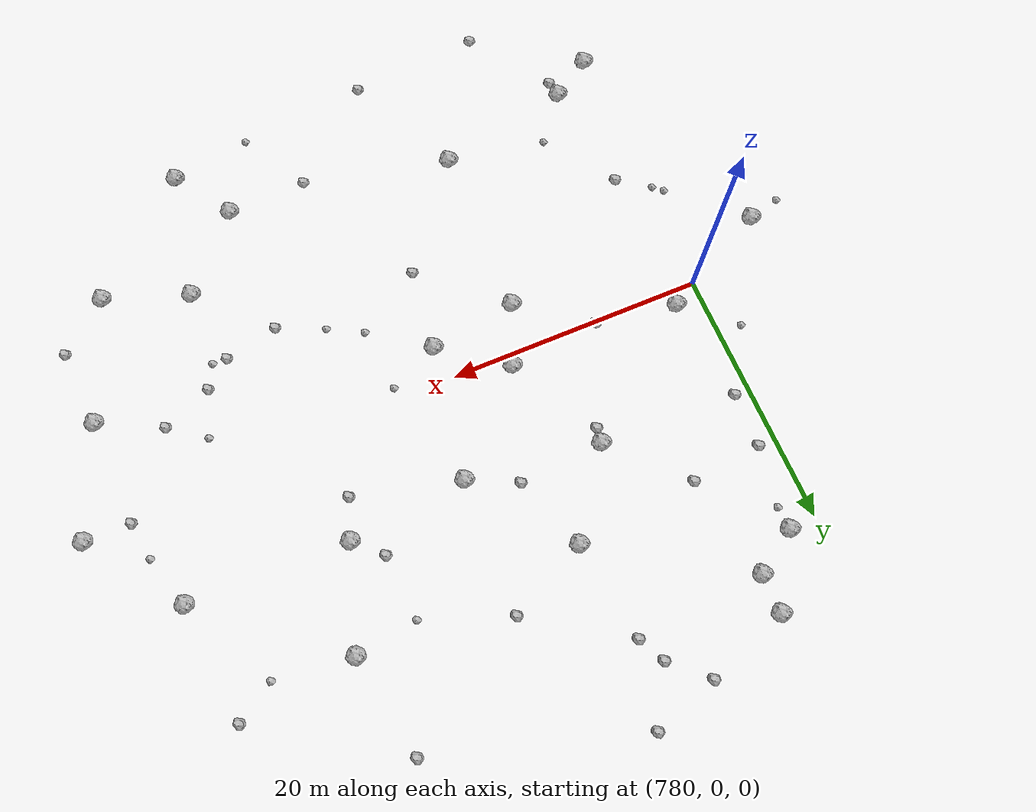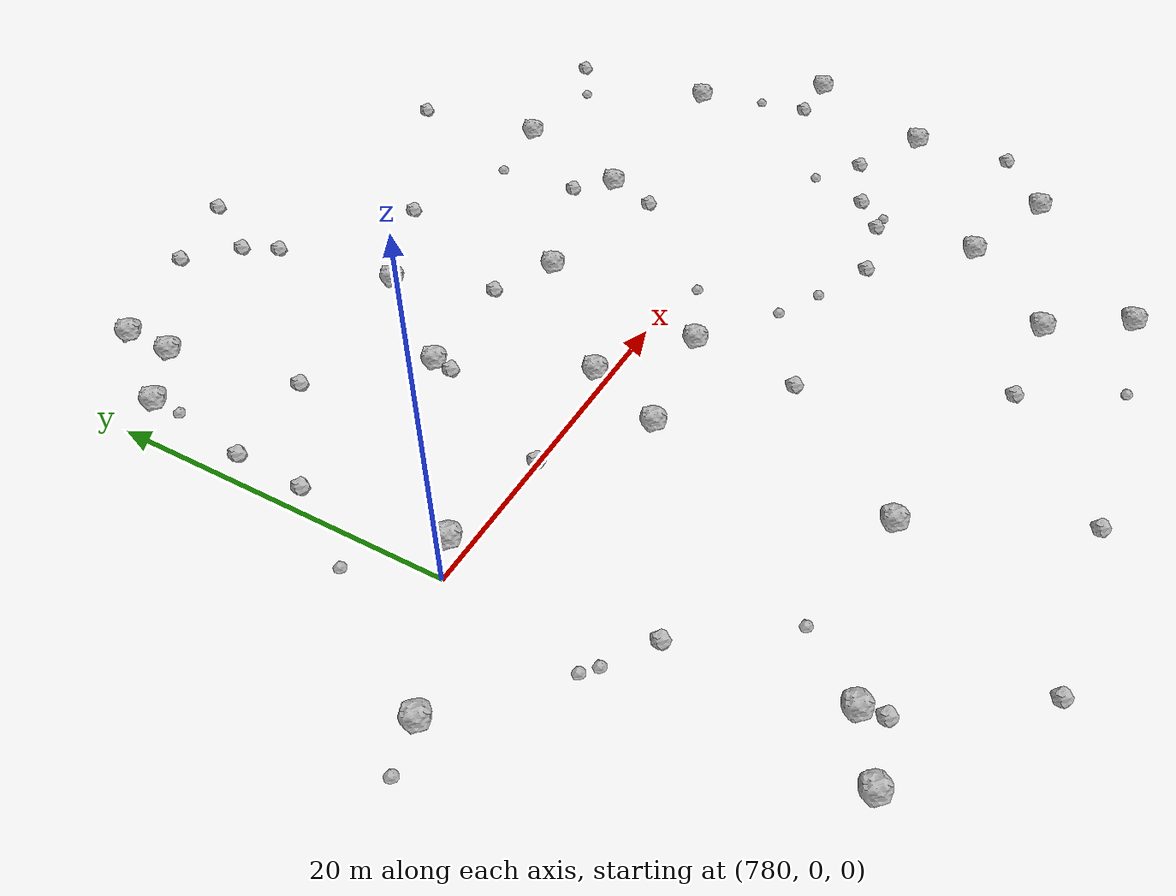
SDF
<sdf version="1.6">
 <world name="default">
  <include><uri>model://sun</uri></include>
  <model name="rock1_20_4">
   <include><uri>model://rock1</uri><pose>814.0163097379069 -23.984878304707088 0.5 0 0 0</pose></include>
  </model>
  <model name="rock1_20_5">
   <include><uri>model://rock1</uri><pose>782.8153142542483 -19.345758773828727 0.5 0 0 0</pose></include>
  </model>
  <model name="rock1_20_6">
   <include><uri>model://rock1</uri><pose>793.3576026095651 -17.16609368759059 0.5 0 0 0</pose></include>
  </model>
  <model name="rock1_20_7">
   <include><uri>model://rock1</uri><pose>782.0785758025405 1.0923270190071541 0.5 0 0 0</pose></include>
  </model>
  <model name="rock1_20_8">
   <include><uri>model://rock1</uri><pose>785.6813026876196 25.405805566849025 0.5 0 0 0</pose></include>
  </model>
  <model name="rock1_20_9">
   <include><uri>model://rock1</uri><pose>793.7163165386621 -3.804403707847193 0.5 0 0 0</pose></include>
  </model>
  <model name="rock1_20_10">
   <include><uri>model://rock1</uri><pose>773.4071577235917 -3.3452967261622177 0.5 0 0 0</pose></include>
  </model>
  <model name="rock1_20_11">
   <include><uri>model://rock1</uri><pose>782.2644061747066 20.174237149473072 0.5 0 0 0</pose></include>
  </model>
  <model name="rock1_20_12">
   <include><uri>model://rock1</uri><pose>792.0888640422655 8.989600163111312 0.5 0 0 0</pose></include>
  </model>
  <model name="rock1_20_13">
   <include><uri>model://rock1</uri><pose>811.9314713556297 8.814282552898568 0.5 0 0 0</pose></include>
  </model>
  <model name="rock1_20_14">
   <include><uri>model://rock1</uri><pose>779.59708329736 -21.355591005870362 0.5 0 0 0</pose></include>
  </model>
  <model name="rock1_20_15">
   <include><uri>model://rock1</uri><pose>811.0220093637811 -19.561460576768603 0.5 0 0 0</pose></include>
  </model>
  <model name="rock1_20_16">
   <include><uri>model://rock1</uri><pose>795.6799231094152 0.8438593433236541 0.5 0 0 0</pose></include>
  </model>
  <model name="rock1_20_17">
   <include><uri>model://rock1</uri><pose>822.6214012294851 -16.25230676237389 0.5 0 0 0</pose></include>
  </model>
  <model name="rock1_20_18">
   <include><uri>model://rock1</uri><pose>800.6109813738638 -2.8023540990076192 0.5 0 0 0</pose></include>
  </model>
  <model name="rock1_20_19">
   <include><uri>model://rock1</uri><pose>785.6284942499586 22.376339717247383 0.5 0 0 0</pose></include>
  </model>
  <model name="rock1_20_20">
   <include><uri>model://rock1</uri><pose>796.7828779247786 15.357880768337836 0.5 0 0 0</pose></include>
  </model>
  <model name="rock1_20_21">
   <include><uri>model://rock1</uri><pose>814.5817950229824 16.67172787594967 0.5 0 0 0</pose></include>
  </model>
  <model name="rock1_20_22">
   <include><uri>model://rock1</uri><pose>816.1524653068667 -13.992008534329855 0.5 0 0 0</pose></include>
  </model>
  <model name="rock1_20_23">
   <include><uri>model://rock1</uri><pose>802.5361142216851 7.727753613618788 0.5 0 0 0</pose></include>
  </model>
  <model name="rock1_20_24">
   <include><uri>model://rock1</uri><pose>826.2482871707339 -6.876847977098514 0.5 0 0 0</pose></include>
  </model>
  <model name="rock1_20_25">
   <include><uri>model://rock1</uri><pose>824.4950437068443 8.599611509218235 0.5 0 0 0</pose></include>
  </model>
  <model name="rock1_20_26">
   <include><uri>model://rock1</uri><pose>829.7694867634535 1.470584001785575 0.5 0 0 0</pose></include>
  </model>
  <model name="rock2_20_0">
   <include><uri>model://rock2</uri><pose>781.775877485644 -10.483279660133263 0.3 0 0 0</pose></include>
  </model>
  <model name="rock2_20_1">
   <include><uri>model://rock2</uri><pose>794.7288071101353 25.274652586544697 0.3 0 0 0</pose></include>
  </model>
  <model name="rock2_20_2">
   <include><uri>model://rock2</uri><pose>821.4498599148401 -4.529852754230497 0.3 0 0 0</pose></include>
  </model>
  <model name="rock2_20_3">
   <include><uri>model://rock2</uri><pose>792.0880836389849 27.781042060807557 0.3 0 0 0</pose></include>
  </model>
  <model name="rock2_20_4">
   <include><uri>model://rock2</uri><pose>813.2424699071098 24.727653346219874 0.3 0 0 0</pose></include>
  </model>
  <model name="rock2_20_5">
   <include><uri>model://rock2</uri><pose>781.1851448042805 9.410027265278757 0.3 0 0 0</pose></include>
  </model>
  <model name="rock2_20_6">
   <include><uri>model://rock2</uri><pose>817.5312210369402 -6.163548995336377 0.3 0 0 0</pose></include>
  </model>
  <model name="rock2_20_7">
   <include><uri>model://rock2</uri><pose>799.7313447090141 -9.172538604684668 0.3 0 0 0</pose></include>
  </model>
  <model name="rock2_20_8">
   <include><uri>model://rock2</uri><pose>810.810197456821 5.681247488515069 0.3 0 0 0</pose></include>
  </model>
  <model name="rock2_20_9">
   <include><uri>model://rock2</uri><pose>786.9968153851485 14.301614302509485 0.3 0 0 0</pose></include>
  </model>
  <model name="rock2_20_10">
   <include><uri>model://rock2</uri><pose>797.2570271375101 29.497791118609435 0.3 0 0 0</pose></include>
  </model>
  <model name="rock2_20_11">
   <include><uri>model://rock2</uri><pose>788.349867461445 0.10998240287034022 0.3 0 0 0</pose></include>
  </model>
  <model name="rock2_20_12">
   <include><uri>model://rock2</uri><pose>787.4190187661704 -26.80931854055673 0.3 0 0 0</pose></include>
  </model>
  <model name="rock2_20_13">
   <include><uri>model://rock2</uri><pose>804.7435998544967 -19.772604179607985 0.3 0 0 0</pose></include>
  </model>
  <model name="rock2_20_14">
   <include><uri>model://rock2</uri><pose>811.1538383658806 -8.92371772510095 0.3 0 0 0</pose></include>
  </model>
  <model name="rock2_20_15">
   <include><uri>model://rock2</uri><pose>823.714327968021 17.902460314592815 0.3 0 0 0</pose></include>
  </model>
  <model name="rock2_20_16">
   <include><uri>model://rock2</uri><pose>791.8621428520091 7.811072641875768 0.3 0 0 0</pose></include>
  </model>
  <model name="rock2_20_17">
   <include><uri>model://rock2</uri><pose>798.7750612139137 9.526843515500808 0.3 0 0 0</pose></include>
  </model>
  <model name="rock2_20_18">
   <include><uri>model://rock2</uri><pose>815.3949653982972 -7.965572492279531 0.3 0 0 0</pose></include>
  </model>
  <model name="rock2_20_19">
   <include><uri>model://rock2</uri><pose>809.939561227887 10.764973258628075 0.3 0 0 0</pose></include>
  </model>
  <model name="rock2_20_20">
   <include><uri>model://rock2</uri><pose>795.7258676260417 23.202222216410647 0.3 0 0 0</pose></include>
  </model>
  <model name="rock2_20_21">
   <include><uri>model://rock2</uri><pose>782.978692267363 -20.613471595855728 0.3 0 0 0</pose></include>
  </model>
  <model name="rock2_20_22">
   <include><uri>model://rock2</uri><pose>826.6045592060826 -12.96439465096821 0.3 0 0 0</pose></include>
  </model>
  <model name="rock2_20_23">
   <include><uri>model://rock2</uri><pose>797.6276155236889 -26.03544984816982 0.3 0 0 0</pose></include>
  </model>
  <model name="rock2_20_24">
   <include><uri>model://rock2</uri><pose>781.3760615430879 13.670945604159371 0.3 0 0 0</pose></include>
  </model>
  <model name="rock2_20_25">
   <include><uri>model://rock2</uri><pose>803.0093729015464 18.400393423616876 0.3 0 0 0</pose></include>
  </model>
  <model name="rock2_20_26">
   <include><uri>model://rock2</uri><pose>826.1227937754911 1.4667549842727716 0.3 0 0 0</pose></include>
  </model>
  <model name="rock3_20_0">
   <include><uri>model://rock3</uri><pose>816.5109398291203 -8.039576711259382 0.2 0 0 0</pose></include>
  </model>
  <model name="rock3_20_1">
   <include><uri>model://rock3</uri><pose>809.6350123568334 15.90574404335856 0.2 0 0 0</pose></include>
  </model>
  <model name="rock3_20_2">
   <include><uri>model://rock3</uri><pose>804.9381467308189 -5.98973384901668 0.2 0 0 0</pose></include>
  </model>
  <model name="rock3_20_3">
   <include><uri>model://rock3</uri><pose>820.6665454588701 15.958344648516501 0.2 0 0 0</pose></include>
  </model>
  <model name="rock3_20_4">
   <include><uri>model://rock3</uri><pose>778.1542304180862 4.502441301031574 0.2 0 0 0</pose></include>
  </model>
  <model name="rock3_20_5">
   <include><uri>model://rock3</uri><pose>782.2084760532202 18.399059826243068 0.2 0 0 0</pose></include>
  </model>
  <model name="rock3_20_6">
   <include><uri>model://rock3</uri><pose>825.6743887813617 4.465990234435914 0.2 0 0 0</pose></include>
  </model>
  <model name="rock3_20_7">
   <include><uri>model://rock3</uri><pose>778.5783603795359 -8.186298470457874 0.2 0 0 0</pose></include>
  </model>
  <model name="rock3_20_8">
   <include><uri>model://rock3</uri><pose>818.7368007689336 -2.5559715194582253 0.2 0 0 0</pose></include>
  </model>
  <model name="rock3_20_9">
   <include><uri>model://rock3</uri><pose>779.3004564929951 -8.824365640744677 0.2 0 0 0</pose></include>
  </model>
  <model name="rock3_20_10">
   <include><uri>model://rock3</uri><pose>770.7352663922139 -4.021278174331933 0.2 0 0 0</pose></include>
  </model>
  <model name="rock3_20_11">
   <include><uri>model://rock3</uri><pose>807.7115104231964 -25.067230277171987 0.2 0 0 0</pose></include>
  </model>
  <model name="rock3_20_12">
   <include><uri>model://rock3</uri><pose>804.5760431802024 -0.9431554830863966 0.2 0 0 0</pose></include>
  </model>
  <model name="rock3_20_13">
   <include><uri>model://rock3</uri><pose>807.5470243814518 -7.374774926869435 0.2 0 0 0</pose></include>
  </model>
  <model name="rock3_20_14">
   <include><uri>model://rock3</uri><pose>785.5922754948688 -15.862550036338627 0.2 0 0 0</pose></include>
  </model>
 </world>
</sdf>
